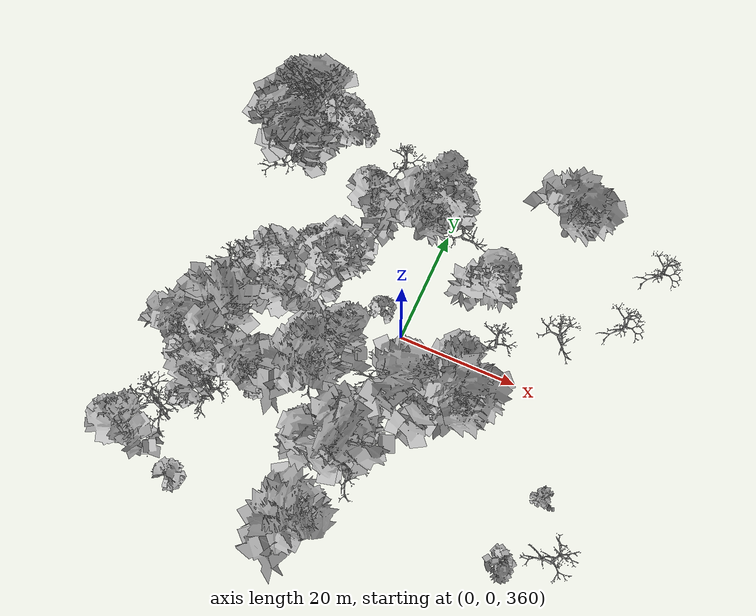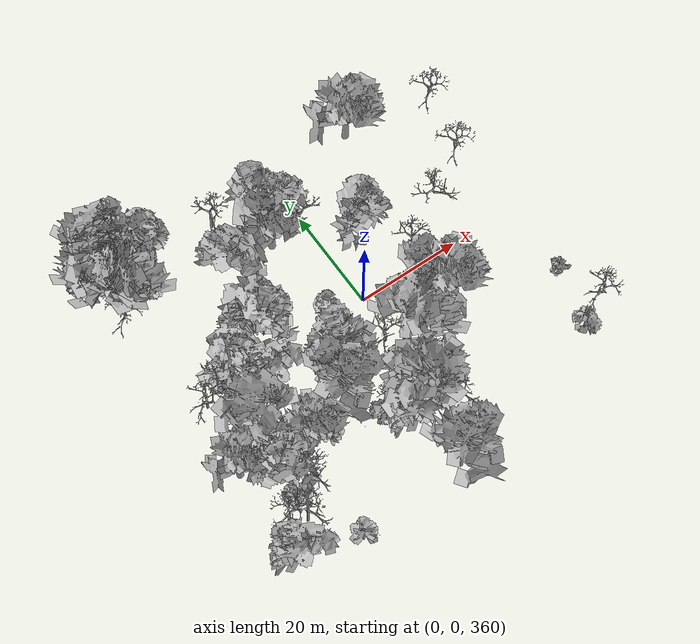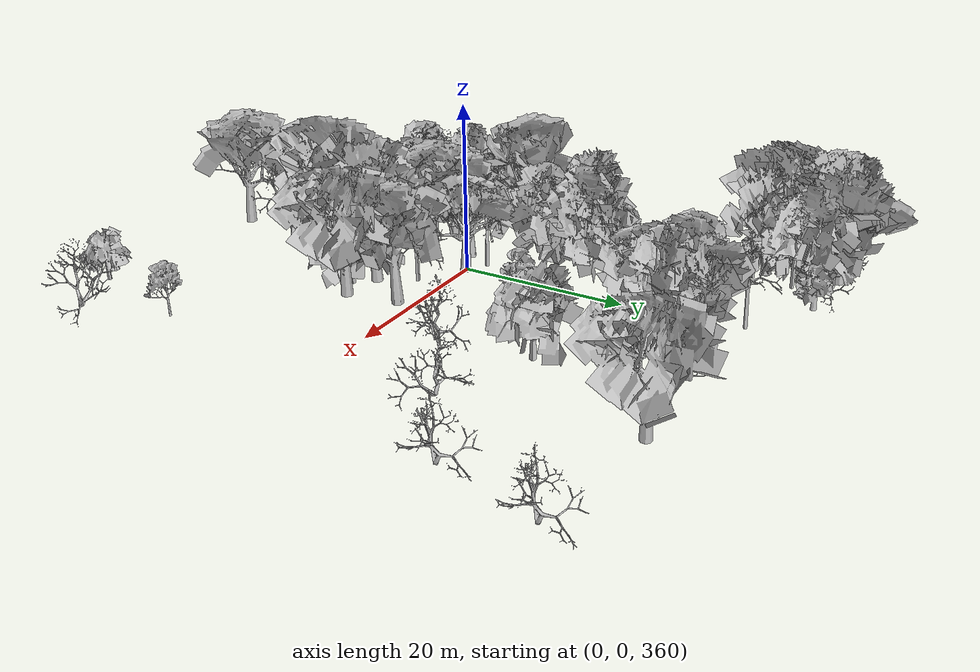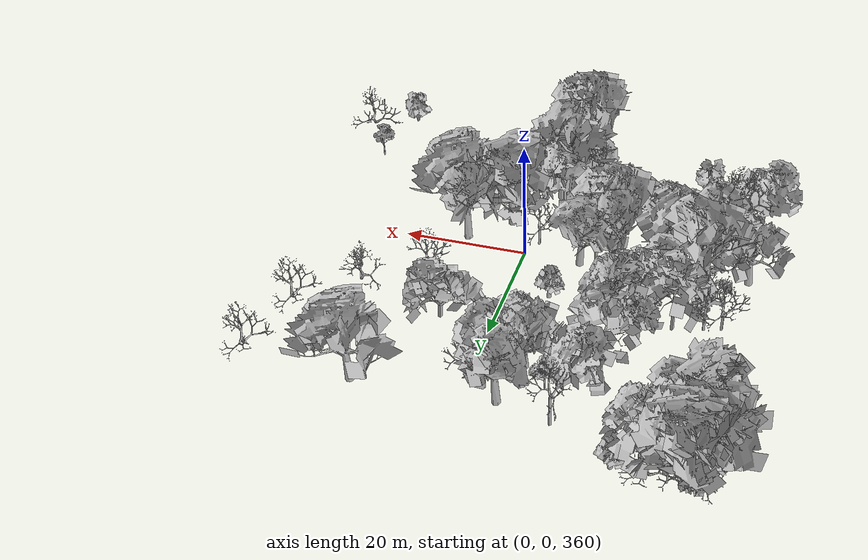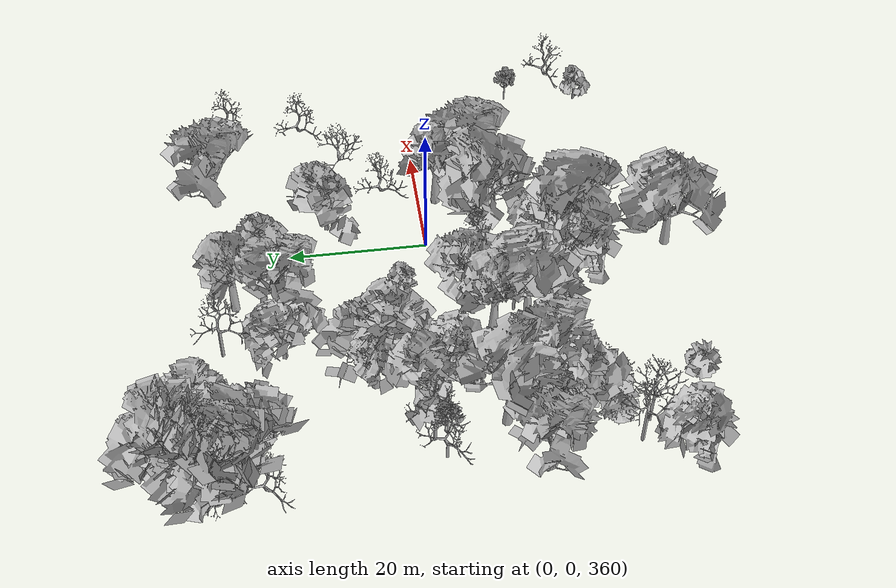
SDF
<sdf version="1.6">
 <world name="default">
  <light name="sun" type="directional">
   <pose>0 0 10 0 -0 0</pose>
   <diffuse>0.8 0.8 0.8 1</diffuse>
   <specular>0.2 0.2 0.2 1</specular>
   <attenuation>
    <range>1000</range>
    <constant>0.9</constant>
    <linear>0.01</linear>
    <quadratic>0.001</quadratic>
   </attenuation>
   <direction>-0.5 0.1 -0.9</direction>
  </light>
  <scene>
   <sky><clouds><speed>12</speed></clouds></sky>
   <ambient>0.4 0.4 0.4 1</ambient>
   <background>0.7 0.7 0.7 1</background>
   <shadows>1</shadows>
  </scene>
  <spherical_coordinates>
   <surface_model>EARTH_WGS84</surface_model>
   <latitude_deg>47.3977</latitude_deg>
   <longitude_deg>8.54559</longitude_deg>
   <elevation>0</elevation>
   <heading_deg>0</heading_deg>
  </spherical_coordinates>
  <physics name="default_physics" default="0" type="ode">
   <ode>
    <solver>
     <type>quick</type>
     <iters>100</iters>
     <sor>1.3</sor>
     <use_dynamic_moi_rescaling>0</use_dynamic_moi_rescaling>
    </solver>
    <constraints>
     <cfm>0</cfm>
     <erp>0.2</erp>
     <contact_max_correcting_vel>100</contact_max_correcting_vel>
     <contact_surface_layer>0.001</contact_surface_layer>
    </constraints>
   </ode>
   <max_step_size>0.002</max_step_size>
   <real_time_factor>1</real_time_factor>
   <real_time_update_rate>500</real_time_update_rate>
  </physics>
  <gravity>0 0 -9.8</gravity>
  <magnetic_field>6e-06 2.3e-05 -4.2e-05</magnetic_field>
  <atmosphere type="adiabatic"/>
  <model name="my_mesh0">
   <pose>-35.3652 30.8476 352.438 0 -0 0.195877</pose>
   <static>1</static>
   <link name="body">
    <visual name="visual">
     <geometry><mesh><uri>model://trees/6.dae</uri><scale>1 1 1</scale></mesh></geometry>
    </visual>
    <collision name="collision">
     <geometry><mesh><uri>model://trees/6.dae</uri><scale>1 1 1</scale></mesh></geometry>
    </collision>
   </link>
  </model>
  <model name="my_mesh1">
   <pose>-33.8111 35.8738 352.652 0 -0 1.45059</pose>
   <static>1</static>
   <link name="body">
    <visual name="visual">
     <geometry><mesh><uri>model://trees/18.dae</uri><scale>1 1 1</scale></mesh></geometry>
    </visual>
    <collision name="collision">
     <geometry><mesh><uri>model://trees/18.dae</uri><scale>1 1 1</scale></mesh></geometry>
    </collision>
   </link>
  </model>
  <model name="my_mesh2">
   <pose>-33.1774 34.299 353.007 0 -0 1.39444</pose>
   <static>1</static>
   <link name="body">
    <visual name="visual">
     <geometry><mesh><uri>model://trees/1.dae</uri><scale>1 1 1</scale></mesh></geometry>
    </visual>
    <collision name="collision">
     <geometry><mesh><uri>model://trees/1.dae</uri><scale>1 1 1</scale></mesh></geometry>
    </collision>
   </link>
  </model>
  <model name="my_mesh3">
   <pose>-33.4604 26.9263 352.824 0 -0 1.07317</pose>
   <static>1</static>
   <link name="body">
    <visual name="visual">
     <geometry><mesh><uri>model://trees/10.dae</uri><scale>1 1 1</scale></mesh></geometry>
    </visual>
    <collision name="collision">
     <geometry><mesh><uri>model://trees/10.dae</uri><scale>1 1 1</scale></mesh></geometry>
    </collision>
   </link>
  </model>
  <model name="my_mesh4">
   <pose>-27.8132 31.2287 353.285 0 0 -1.21546</pose>
   <static>1</static>
   <link name="body">
    <visual name="visual">
     <geometry><mesh><uri>model://trees/16.dae</uri><scale>1 1 1</scale></mesh></geometry>
    </visual>
    <collision name="collision">
     <geometry><mesh><uri>model://trees/16.dae</uri><scale>1 1 1</scale></mesh></geometry>
    </collision>
   </link>
  </model>
  <model name="my_mesh5">
   <pose>-35.2301 33.1384 352.367 0 -0 1.33233</pose>
   <static>1</static>
   <link name="body">
    <visual name="visual">
     <geometry><mesh><uri>model://trees/6.dae</uri><scale>1 1 1</scale></mesh></geometry>
    </visual>
    <collision name="collision">
     <geometry><mesh><uri>model://trees/6.dae</uri><scale>1 1 1</scale></mesh></geometry>
    </collision>
   </link>
  </model>
  <model name="my_mesh6">
   <pose>-30.2027 31.773 353.059 0 0 -0.309634</pose>
   <static>1</static>
   <link name="body">
    <visual name="visual">
     <geometry><mesh><uri>model://trees/8.dae</uri><scale>1 1 1</scale></mesh></geometry>
    </visual>
    <collision name="collision">
     <geometry><mesh><uri>model://trees/8.dae</uri><scale>1 1 1</scale></mesh></geometry>
    </collision>
   </link>
  </model>
  <model name="my_mesh7">
   <pose>-27.9609 35.1296 353.264 0 0 -1.38393</pose>
   <static>1</static>
   <link name="body">
    <visual name="visual">
     <geometry><mesh><uri>model://trees/19.dae</uri><scale>1 1 1</scale></mesh></geometry>
    </visual>
    <collision name="collision">
     <geometry><mesh><uri>model://trees/19.dae</uri><scale>1 1 1</scale></mesh></geometry>
    </collision>
   </link>
  </model>
  <model name="my_mesh8">
   <pose>-28.6367 25.7717 353.212 0 -0 1.24113</pose>
   <static>1</static>
   <link name="body">
    <visual name="visual">
     <geometry><mesh><uri>model://trees/4.dae</uri><scale>1 1 1</scale></mesh></geometry>
    </visual>
    <collision name="collision">
     <geometry><mesh><uri>model://trees/4.dae</uri><scale>1 1 1</scale></mesh></geometry>
    </collision>
   </link>
  </model>
  <model name="my_mesh9">
   <pose>-35.3462 34.7001 352.317 0 0 -0.646969</pose>
   <static>1</static>
   <link name="body">
    <visual name="visual">
     <geometry><mesh><uri>model://trees/7.dae</uri><scale>1 1 1</scale></mesh></geometry>
    </visual>
    <collision name="collision">
     <geometry><mesh><uri>model://trees/7.dae</uri><scale>1 1 1</scale></mesh></geometry>
    </collision>
   </link>
  </model>
  <model name="my_mesh10">
   <pose>-35.0793 35.2213 352.303 0 -0 0.65713</pose>
   <static>1</static>
   <link name="body">
    <visual name="visual">
     <geometry><mesh><uri>model://trees/4.dae</uri><scale>1 1 1</scale></mesh></geometry>
    </visual>
    <collision name="collision">
     <geometry><mesh><uri>model://trees/4.dae</uri><scale>1 1 1</scale></mesh></geometry>
    </collision>
   </link>
  </model>
  <model name="my_mesh11">
   <pose>-35.1208 31.8485 352.42 0 0 -0.014671</pose>
   <static>1</static>
   <link name="body">
    <visual name="visual">
     <geometry><mesh><uri>model://trees/10.dae</uri><scale>1 1 1</scale></mesh></geometry>
    </visual>
    <collision name="collision">
     <geometry><mesh><uri>model://trees/10.dae</uri><scale>1 1 1</scale></mesh></geometry>
    </collision>
   </link>
  </model>
  <model name="my_mesh12">
   <pose>-34.9672 31.3913 352.637 0 -0 0.879317</pose>
   <static>1</static>
   <link name="body">
    <visual name="visual">
     <geometry><mesh><uri>model://trees/6.dae</uri><scale>1 1 1</scale></mesh></geometry>
    </visual>
    <collision name="collision">
     <geometry><mesh><uri>model://trees/6.dae</uri><scale>1 1 1</scale></mesh></geometry>
    </collision>
   </link>
  </model>
  <model name="my_mesh13">
   <pose>-35.3134 35.0784 352.303 0 -0 0.163908</pose>
   <static>1</static>
   <link name="body">
    <visual name="visual">
     <geometry><mesh><uri>model://trees/3.dae</uri><scale>1 1 1</scale></mesh></geometry>
    </visual>
    <collision name="collision">
     <geometry><mesh><uri>model://trees/3.dae</uri><scale>1 1 1</scale></mesh></geometry>
    </collision>
   </link>
  </model>
  <model name="my_mesh14">
   <pose>-35.5754 33.8266 352.342 0 0 -0.976255</pose>
   <static>1</static>
   <link name="body">
    <visual name="visual">
     <geometry><mesh><uri>model://trees/3.dae</uri><scale>1 1 1</scale></mesh></geometry>
    </visual>
    <collision name="collision">
     <geometry><mesh><uri>model://trees/3.dae</uri><scale>1 1 1</scale></mesh></geometry>
    </collision>
   </link>
  </model>
  <model name="my_mesh15">
   <pose>-35.6537 31.3052 352.438 0 -0 0.503863</pose>
   <static>1</static>
   <link name="body">
    <visual name="visual">
     <geometry><mesh><uri>model://trees/11.dae</uri><scale>1 1 1</scale></mesh></geometry>
    </visual>
    <collision name="collision">
     <geometry><mesh><uri>model://trees/11.dae</uri><scale>1 1 1</scale></mesh></geometry>
    </collision>
   </link>
  </model>
  <model name="my_mesh16">
   <pose>-35.3943 35.0769 352.303 0 -0 1.33201</pose>
   <static>1</static>
   <link name="body">
    <visual name="visual">
     <geometry><mesh><uri>model://trees/4.dae</uri><scale>1 1 1</scale></mesh></geometry>
    </visual>
    <collision name="collision">
     <geometry><mesh><uri>model://trees/4.dae</uri><scale>1 1 1</scale></mesh></geometry>
    </collision>
   </link>
  </model>
  <model name="my_mesh17">
   <pose>-34.5774 32.4387 352.584 0 -0 1.11186</pose>
   <static>1</static>
   <link name="body">
    <visual name="visual">
     <geometry><mesh><uri>model://trees/9.dae</uri><scale>1 1 1</scale></mesh></geometry>
    </visual>
    <collision name="collision">
     <geometry><mesh><uri>model://trees/9.dae</uri><scale>1 1 1</scale></mesh></geometry>
    </collision>
   </link>
  </model>
  <model name="my_mesh18">
   <pose>-30.0454 32.6426 353.126 0 0 -1.21532</pose>
   <static>1</static>
   <link name="body">
    <visual name="visual">
     <geometry><mesh><uri>model://trees/0.dae</uri><scale>1 1 1</scale></mesh></geometry>
    </visual>
    <collision name="collision">
     <geometry><mesh><uri>model://trees/0.dae</uri><scale>1 1 1</scale></mesh></geometry>
    </collision>
   </link>
  </model>
  <model name="my_mesh19">
   <pose>-32.3921 35.3133 352.99 0 0 -1.11481</pose>
   <static>1</static>
   <link name="body">
    <visual name="visual">
     <geometry><mesh><uri>model://trees/2.dae</uri><scale>1 1 1</scale></mesh></geometry>
    </visual>
    <collision name="collision">
     <geometry><mesh><uri>model://trees/2.dae</uri><scale>1 1 1</scale></mesh></geometry>
    </collision>
   </link>
  </model>
  <model name="my_mesh20">
   <pose>-30.4644 26.9543 353.027 0 0 -1.51296</pose>
   <static>1</static>
   <link name="body">
    <visual name="visual">
     <geometry><mesh><uri>model://trees/16.dae</uri><scale>1 1 1</scale></mesh></geometry>
    </visual>
    <collision name="collision">
     <geometry><mesh><uri>model://trees/16.dae</uri><scale>1 1 1</scale></mesh></geometry>
    </collision>
   </link>
  </model>
  <model name="my_mesh21">
   <pose>-34.9238 33.6717 352.496 0 0 -1.35786</pose>
   <static>1</static>
   <link name="body">
    <visual name="visual">
     <geometry><mesh><uri>model://trees/5.dae</uri><scale>1 1 1</scale></mesh></geometry>
    </visual>
    <collision name="collision">
     <geometry><mesh><uri>model://trees/5.dae</uri><scale>1 1 1</scale></mesh></geometry>
    </collision>
   </link>
  </model>
  <model name="my_mesh22">
   <pose>-22.5848 35.5524 353.517 0 -0 0.316544</pose>
   <static>1</static>
   <link name="body">
    <visual name="visual">
     <geometry><mesh><uri>model://trees/1.dae</uri><scale>1 1 1</scale></mesh></geometry>
    </visual>
    <collision name="collision">
     <geometry><mesh><uri>model://trees/1.dae</uri><scale>1 1 1</scale></mesh></geometry>
    </collision>
   </link>
  </model>
  <model name="my_mesh23">
   <pose>-34.1499 33.7954 352.752 0 -0 0.523449</pose>
   <static>1</static>
   <link name="body">
    <visual name="visual">
     <geometry><mesh><uri>model://trees/1.dae</uri><scale>1 1 1</scale></mesh></geometry>
    </visual>
    <collision name="collision">
     <geometry><mesh><uri>model://trees/1.dae</uri><scale>1 1 1</scale></mesh></geometry>
    </collision>
   </link>
  </model>
  <model name="my_mesh24">
   <pose>-35.4867 32.8474 352.394 0 0 -0.36767</pose>
   <static>1</static>
   <link name="body">
    <visual name="visual">
     <geometry><mesh><uri>model://trees/8.dae</uri><scale>1 1 1</scale></mesh></geometry>
    </visual>
    <collision name="collision">
     <geometry><mesh><uri>model://trees/8.dae</uri><scale>1 1 1</scale></mesh></geometry>
    </collision>
   </link>
  </model>
  <model name="my_mesh25">
   <pose>-35.0599 32.5403 352.394 0 -0 0.427675</pose>
   <static>1</static>
   <link name="body">
    <visual name="visual">
     <geometry><mesh><uri>model://trees/1.dae</uri><scale>1 1 1</scale></mesh></geometry>
    </visual>
    <collision name="collision">
     <geometry><mesh><uri>model://trees/1.dae</uri><scale>1 1 1</scale></mesh></geometry>
    </collision>
   </link>
  </model>
  <model name="my_mesh26">
   <pose>-33.9811 34.1489 352.752 0 -0 0.124366</pose>
   <static>1</static>
   <link name="body">
    <visual name="visual">
     <geometry><mesh><uri>model://trees/10.dae</uri><scale>1 1 1</scale></mesh></geometry>
    </visual>
    <collision name="collision">
     <geometry><mesh><uri>model://trees/10.dae</uri><scale>1 1 1</scale></mesh></geometry>
    </collision>
   </link>
  </model>
  <model name="my_mesh27">
   <pose>-32.9803 35.8603 352.913 0 -0 0.493119</pose>
   <static>1</static>
   <link name="body">
    <visual name="visual">
     <geometry><mesh><uri>model://trees/10.dae</uri><scale>1 1 1</scale></mesh></geometry>
    </visual>
    <collision name="collision">
     <geometry><mesh><uri>model://trees/10.dae</uri><scale>1 1 1</scale></mesh></geometry>
    </collision>
   </link>
  </model>
  <model name="my_mesh28">
   <pose>-35.2699 35.5739 352.303 0 0 -1.27558</pose>
   <static>1</static>
   <link name="body">
    <visual name="visual">
     <geometry><mesh><uri>model://trees/6.dae</uri><scale>1 1 1</scale></mesh></geometry>
    </visual>
    <collision name="collision">
     <geometry><mesh><uri>model://trees/6.dae</uri><scale>1 1 1</scale></mesh></geometry>
    </collision>
   </link>
  </model>
  <model name="my_mesh29">
   <pose>-30.7212 35.82 353.118 0 0 -1.14758</pose>
   <static>1</static>
   <link name="body">
    <visual name="visual">
     <geometry><mesh><uri>model://trees/3.dae</uri><scale>1 1 1</scale></mesh></geometry>
    </visual>
    <collision name="collision">
     <geometry><mesh><uri>model://trees/3.dae</uri><scale>1 1 1</scale></mesh></geometry>
    </collision>
   </link>
  </model>
  <model name="my_mesh30">
   <pose>-34.6891 25.1217 352.783 0 0 -0.655012</pose>
   <static>1</static>
   <link name="body">
    <visual name="visual">
     <geometry><mesh><uri>model://trees/19.dae</uri><scale>1 1 1</scale></mesh></geometry>
    </visual>
    <collision name="collision">
     <geometry><mesh><uri>model://trees/19.dae</uri><scale>1 1 1</scale></mesh></geometry>
    </collision>
   </link>
  </model>
  <model name="my_mesh31">
   <pose>-34.535 28.0293 352.753 0 -0 1.38447</pose>
   <static>1</static>
   <link name="body">
    <visual name="visual">
     <geometry><mesh><uri>model://trees/10.dae</uri><scale>1 1 1</scale></mesh></geometry>
    </visual>
    <collision name="collision">
     <geometry><mesh><uri>model://trees/10.dae</uri><scale>1 1 1</scale></mesh></geometry>
    </collision>
   </link>
  </model>
  <model name="my_mesh32">
   <pose>-34.4174 34.0121 352.496 0 -0 0.303908</pose>
   <static>1</static>
   <link name="body">
    <visual name="visual">
     <geometry><mesh><uri>model://trees/19.dae</uri><scale>1 1 1</scale></mesh></geometry>
    </visual>
    <collision name="collision">
     <geometry><mesh><uri>model://trees/19.dae</uri><scale>1 1 1</scale></mesh></geometry>
    </collision>
   </link>
  </model>
  <model name="my_mesh33">
   <pose>9.64162 14.218 356.296 0 0 -1.20583</pose>
   <static>1</static>
   <link name="body">
    <visual name="visual">
     <geometry><mesh><uri>model://trees/13.dae</uri><scale>1 1 1</scale></mesh></geometry>
    </visual>
    <collision name="collision">
     <geometry><mesh><uri>model://trees/13.dae</uri><scale>1 1 1</scale></mesh></geometry>
    </collision>
   </link>
  </model>
  <model name="my_mesh34">
   <pose>-20.6433 2.03179 354.302 0 -0 1.35752</pose>
   <static>1</static>
   <link name="body">
    <visual name="visual">
     <geometry><mesh><uri>model://trees/5.dae</uri><scale>1 1 1</scale></mesh></geometry>
    </visual>
    <collision name="collision">
     <geometry><mesh><uri>model://trees/5.dae</uri><scale>1 1 1</scale></mesh></geometry>
    </collision>
   </link>
  </model>
  <model name="my_mesh35">
   <pose>2.0374 -24.5746 359.397 0 -0 0.504312</pose>
   <static>1</static>
   <link name="body">
    <visual name="visual">
     <geometry><mesh><uri>model://trees/16.dae</uri><scale>1 1 1</scale></mesh></geometry>
    </visual>
    <collision name="collision">
     <geometry><mesh><uri>model://trees/16.dae</uri><scale>1 1 1</scale></mesh></geometry>
    </collision>
   </link>
  </model>
  <model name="my_mesh36">
   <pose>-20.4853 9.58534 354.003 0 -0 1.25344</pose>
   <static>1</static>
   <link name="body">
    <visual name="visual">
     <geometry><mesh><uri>model://trees/7.dae</uri><scale>1 1 1</scale></mesh></geometry>
    </visual>
    <collision name="collision">
     <geometry><mesh><uri>model://trees/7.dae</uri><scale>1 1 1</scale></mesh></geometry>
    </collision>
   </link>
  </model>
  <model name="my_mesh37">
   <pose>-21.3967 -15.483 353.909 0 0 -0.556266</pose>
   <static>1</static>
   <link name="body">
    <visual name="visual">
     <geometry><mesh><uri>model://trees/8.dae</uri><scale>1 1 1</scale></mesh></geometry>
    </visual>
    <collision name="collision">
     <geometry><mesh><uri>model://trees/8.dae</uri><scale>1 1 1</scale></mesh></geometry>
    </collision>
   </link>
  </model>
  <model name="my_mesh38">
   <pose>-12.4264 30.3753 354.186 0 0 -0.112471</pose>
   <static>1</static>
   <link name="body">
    <visual name="visual">
     <geometry><mesh><uri>model://trees/16.dae</uri><scale>1 1 1</scale></mesh></geometry>
    </visual>
    <collision name="collision">
     <geometry><mesh><uri>model://trees/16.dae</uri><scale>1 1 1</scale></mesh></geometry>
    </collision>
   </link>
  </model>
  <model name="my_mesh39">
   <pose>-24.528 -35.0099 353.548 0 0 -1.35545</pose>
   <static>1</static>
   <link name="body">
    <visual name="visual">
     <geometry><mesh><uri>model://trees/5.dae</uri><scale>1 1 1</scale></mesh></geometry>
    </visual>
    <collision name="collision">
     <geometry><mesh><uri>model://trees/5.dae</uri><scale>1 1 1</scale></mesh></geometry>
    </collision>
   </link>
  </model>
  <model name="my_mesh40">
   <pose>-32.7516 1.48252 352.783 0 0 -0.872725</pose>
   <static>1</static>
   <link name="body">
    <visual name="visual">
     <geometry><mesh><uri>model://trees/17.dae</uri><scale>1 1 1</scale></mesh></geometry>
    </visual>
    <collision name="collision">
     <geometry><mesh><uri>model://trees/17.dae</uri><scale>1 1 1</scale></mesh></geometry>
    </collision>
   </link>
  </model>
  <model name="my_mesh41">
   <pose>-26.3413 33.6267 353.363 0 0 -0.373485</pose>
   <static>1</static>
   <link name="body">
    <visual name="visual">
     <geometry><mesh><uri>model://trees/15.dae</uri><scale>1 1 1</scale></mesh></geometry>
    </visual>
    <collision name="collision">
     <geometry><mesh><uri>model://trees/15.dae</uri><scale>1 1 1</scale></mesh></geometry>
    </collision>
   </link>
  </model>
  <model name="my_mesh42">
   <pose>-6.47248 24.2568 354.881 0 0 -0.562773</pose>
   <static>1</static>
   <link name="body">
    <visual name="visual">
     <geometry><mesh><uri>model://trees/11.dae</uri><scale>1 1 1</scale></mesh></geometry>
    </visual>
    <collision name="collision">
     <geometry><mesh><uri>model://trees/11.dae</uri><scale>1 1 1</scale></mesh></geometry>
    </collision>
   </link>
  </model>
  <model name="my_mesh43">
   <pose>-2.40986 -35.6157 358.417 0 -0 0.441189</pose>
   <static>1</static>
   <link name="body">
    <visual name="visual">
     <geometry><mesh><uri>model://trees/9.dae</uri><scale>1 1 1</scale></mesh></geometry>
    </visual>
    <collision name="collision">
     <geometry><mesh><uri>model://trees/9.dae</uri><scale>1 1 1</scale></mesh></geometry>
    </collision>
   </link>
  </model>
  <model name="my_mesh44">
   <pose>-30.5511 -13.3524 352.61 0 0 -1.52076</pose>
   <static>1</static>
   <link name="body">
    <visual name="visual">
     <geometry><mesh><uri>model://trees/12.dae</uri><scale>1 1 1</scale></mesh></geometry>
    </visual>
    <collision name="collision">
     <geometry><mesh><uri>model://trees/12.dae</uri><scale>1 1 1</scale></mesh></geometry>
    </collision>
   </link>
  </model>
  <model name="my_mesh45">
   <pose>-0.876534 -21.3767 358.098 0 -0 0.147342</pose>
   <static>1</static>
   <link name="body">
    <visual name="visual">
     <geometry><mesh><uri>model://trees/11.dae</uri><scale>1 1 1</scale></mesh></geometry>
    </visual>
    <collision name="collision">
     <geometry><mesh><uri>model://trees/11.dae</uri><scale>1 1 1</scale></mesh></geometry>
    </collision>
   </link>
  </model>
  <model name="my_mesh46">
   <pose>-25.333 4.49982 353.659 0 0 -1.16512</pose>
   <static>1</static>
   <link name="body">
    <visual name="visual">
     <geometry><mesh><uri>model://trees/15.dae</uri><scale>1 1 1</scale></mesh></geometry>
    </visual>
    <collision name="collision">
     <geometry><mesh><uri>model://trees/15.dae</uri><scale>1 1 1</scale></mesh></geometry>
    </collision>
   </link>
  </model>
  <model name="my_mesh47">
   <pose>-30.0887 2.74625 353.21 0 0 -0.51775</pose>
   <static>1</static>
   <link name="body">
    <visual name="visual">
     <geometry><mesh><uri>model://trees/16.dae</uri><scale>1 1 1</scale></mesh></geometry>
    </visual>
    <collision name="collision">
     <geometry><mesh><uri>model://trees/16.dae</uri><scale>1 1 1</scale></mesh></geometry>
    </collision>
   </link>
  </model>
  <model name="my_mesh48">
   <pose>-28.5476 -7.23359 353.202 0 0 -0.482808</pose>
   <static>1</static>
   <link name="body">
    <visual name="visual">
     <geometry><mesh><uri>model://trees/10.dae</uri><scale>1 1 1</scale></mesh></geometry>
    </visual>
    <collision name="collision">
     <geometry><mesh><uri>model://trees/10.dae</uri><scale>1 1 1</scale></mesh></geometry>
    </collision>
   </link>
  </model>
  <model name="my_mesh49">
   <pose>-35.1346 -12.2325 351.974 0 0 -0.948463</pose>
   <static>1</static>
   <link name="body">
    <visual name="visual">
     <geometry><mesh><uri>model://trees/8.dae</uri><scale>1 1 1</scale></mesh></geometry>
    </visual>
    <collision name="collision">
     <geometry><mesh><uri>model://trees/8.dae</uri><scale>1 1 1</scale></mesh></geometry>
    </collision>
   </link>
  </model>
  <model name="my_mesh50">
   <pose>-25.1964 -20.5355 353.371 0 -0 0.108292</pose>
   <static>1</static>
   <link name="body">
    <visual name="visual">
     <geometry><mesh><uri>model://trees/17.dae</uri><scale>1 1 1</scale></mesh></geometry>
    </visual>
    <collision name="collision">
     <geometry><mesh><uri>model://trees/17.dae</uri><scale>1 1 1</scale></mesh></geometry>
    </collision>
   </link>
  </model>
  <model name="my_mesh51">
   <pose>-25.7694 -19.3413 353.344 0 0 -0.113665</pose>
   <static>1</static>
   <link name="body">
    <visual name="visual">
     <geometry><mesh><uri>model://trees/19.dae</uri><scale>1 1 1</scale></mesh></geometry>
    </visual>
    <collision name="collision">
     <geometry><mesh><uri>model://trees/19.dae</uri><scale>1 1 1</scale></mesh></geometry>
    </collision>
   </link>
  </model>
  <model name="my_mesh52">
   <pose>-16.1169 10.9042 354.321 0 0 -1.08845</pose>
   <static>1</static>
   <link name="body">
    <visual name="visual">
     <geometry><mesh><uri>model://trees/12.dae</uri><scale>1 1 1</scale></mesh></geometry>
    </visual>
    <collision name="collision">
     <geometry><mesh><uri>model://trees/12.dae</uri><scale>1 1 1</scale></mesh></geometry>
    </collision>
   </link>
  </model>
  <model name="my_mesh53">
   <pose>-34.2348 32.708 352.775 0 -0 1.50407</pose>
   <static>1</static>
   <link name="body">
    <visual name="visual">
     <geometry><mesh><uri>model://trees/19.dae</uri><scale>1 1 1</scale></mesh></geometry>
    </visual>
    <collision name="collision">
     <geometry><mesh><uri>model://trees/19.dae</uri><scale>1 1 1</scale></mesh></geometry>
    </collision>
   </link>
  </model>
  <model name="my_mesh54">
   <pose>-9.35396 -19.0089 355.811 0 -0 1.1679</pose>
   <static>1</static>
   <link name="body">
    <visual name="visual">
     <geometry><mesh><uri>model://trees/4.dae</uri><scale>1 1 1</scale></mesh></geometry>
    </visual>
    <collision name="collision">
     <geometry><mesh><uri>model://trees/4.dae</uri><scale>1 1 1</scale></mesh></geometry>
    </collision>
   </link>
  </model>
  <model name="my_mesh55">
   <pose>-21.238 -14.4147 353.855 0 -0 1.38274</pose>
   <static>1</static>
   <link name="body">
    <visual name="visual">
     <geometry><mesh><uri>model://trees/1.dae</uri><scale>1 1 1</scale></mesh></geometry>
    </visual>
    <collision name="collision">
     <geometry><mesh><uri>model://trees/1.dae</uri><scale>1 1 1</scale></mesh></geometry>
    </collision>
   </link>
  </model>
  <model name="my_mesh56">
   <pose>-7.8816 -5.27165 355.608 0 -0 1.41294</pose>
   <static>1</static>
   <link name="body">
    <visual name="visual">
     <geometry><mesh><uri>model://trees/8.dae</uri><scale>1 1 1</scale></mesh></geometry>
    </visual>
    <collision name="collision">
     <geometry><mesh><uri>model://trees/8.dae</uri><scale>1 1 1</scale></mesh></geometry>
    </collision>
   </link>
  </model>
  <model name="my_mesh57">
   <pose>-16.7523 7.11734 354.376 0 -0 0.374418</pose>
   <static>1</static>
   <link name="body">
    <visual name="visual">
     <geometry><mesh><uri>model://trees/15.dae</uri><scale>1 1 1</scale></mesh></geometry>
    </visual>
    <collision name="collision">
     <geometry><mesh><uri>model://trees/15.dae</uri><scale>1 1 1</scale></mesh></geometry>
    </collision>
   </link>
  </model>
  <model name="my_mesh58">
   <pose>-10.1729 -11.3798 355.43 0 -0 0.327623</pose>
   <static>1</static>
   <link name="body">
    <visual name="visual">
     <geometry><mesh><uri>model://trees/16.dae</uri><scale>1 1 1</scale></mesh></geometry>
    </visual>
    <collision name="collision">
     <geometry><mesh><uri>model://trees/16.dae</uri><scale>1 1 1</scale></mesh></geometry>
    </collision>
   </link>
  </model>
  <model name="my_mesh59">
   <pose>-1.71413 23.879 355.045 0 0 -0.591296</pose>
   <static>1</static>
   <link name="body">
    <visual name="visual">
     <geometry><mesh><uri>model://trees/14.dae</uri><scale>1 1 1</scale></mesh></geometry>
    </visual>
    <collision name="collision">
     <geometry><mesh><uri>model://trees/14.dae</uri><scale>1 1 1</scale></mesh></geometry>
    </collision>
   </link>
  </model>
  <model name="my_mesh60">
   <pose>-29.2906 0.886631 353.324 0 -0 0.376002</pose>
   <static>1</static>
   <link name="body">
    <visual name="visual">
     <geometry><mesh><uri>model://trees/6.dae</uri><scale>1 1 1</scale></mesh></geometry>
    </visual>
    <collision name="collision">
     <geometry><mesh><uri>model://trees/6.dae</uri><scale>1 1 1</scale></mesh></geometry>
    </collision>
   </link>
  </model>
  <model name="my_mesh61">
   <pose>-29.807 -22.133 352.775 0 -0 1.05348</pose>
   <static>1</static>
   <link name="body">
    <visual name="visual">
     <geometry><mesh><uri>model://trees/5.dae</uri><scale>1 1 1</scale></mesh></geometry>
    </visual>
    <collision name="collision">
     <geometry><mesh><uri>model://trees/5.dae</uri><scale>1 1 1</scale></mesh></geometry>
    </collision>
   </link>
  </model>
  <model name="my_mesh62">
   <pose>-30.4342 -26.3936 352.794 0 -0 0.527643</pose>
   <static>1</static>
   <link name="body">
    <visual name="visual">
     <geometry><mesh><uri>model://trees/16.dae</uri><scale>1 1 1</scale></mesh></geometry>
    </visual>
    <collision name="collision">
     <geometry><mesh><uri>model://trees/16.dae</uri><scale>1 1 1</scale></mesh></geometry>
    </collision>
   </link>
  </model>
  <model name="my_mesh63">
   <pose>-0.408267 -7.43351 356.694 0 0 -0.58592</pose>
   <static>1</static>
   <link name="body">
    <visual name="visual">
     <geometry><mesh><uri>model://trees/17.dae</uri><scale>1 1 1</scale></mesh></geometry>
    </visual>
    <collision name="collision">
     <geometry><mesh><uri>model://trees/17.dae</uri><scale>1 1 1</scale></mesh></geometry>
    </collision>
   </link>
  </model>
  <model name="my_mesh64">
   <pose>-5.21461 4.17373 355.567 0 -0 0.550621</pose>
   <static>1</static>
   <link name="body">
    <visual name="visual">
     <geometry><mesh><uri>model://trees/1.dae</uri><scale>1 1 1</scale></mesh></geometry>
    </visual>
    <collision name="collision">
     <geometry><mesh><uri>model://trees/1.dae</uri><scale>1 1 1</scale></mesh></geometry>
    </collision>
   </link>
  </model>
  <model name="my_mesh65">
   <pose>-14.0759 21.7248 354.35 0 -0 0.434796</pose>
   <static>1</static>
   <link name="body">
    <visual name="visual">
     <geometry><mesh><uri>model://trees/13.dae</uri><scale>1 1 1</scale></mesh></geometry>
    </visual>
    <collision name="collision">
     <geometry><mesh><uri>model://trees/13.dae</uri><scale>1 1 1</scale></mesh></geometry>
    </collision>
   </link>
  </model>
  <model name="my_mesh66">
   <pose>-9.92838 23.8603 354.712 0 -0 1.51808</pose>
   <static>1</static>
   <link name="body">
    <visual name="visual">
     <geometry><mesh><uri>model://trees/2.dae</uri><scale>1 1 1</scale></mesh></geometry>
    </visual>
    <collision name="collision">
     <geometry><mesh><uri>model://trees/2.dae</uri><scale>1 1 1</scale></mesh></geometry>
    </collision>
   </link>
  </model>
  <model name="my_mesh67">
   <pose>-3.83547 28.5056 354.521 0 -0 1.25796</pose>
   <static>1</static>
   <link name="body">
    <visual name="visual">
     <geometry><mesh><uri>model://trees/11.dae</uri><scale>1 1 1</scale></mesh></geometry>
    </visual>
    <collision name="collision">
     <geometry><mesh><uri>model://trees/11.dae</uri><scale>1 1 1</scale></mesh></geometry>
    </collision>
   </link>
  </model>
  <model name="my_mesh68">
   <pose>-5.80459 20.4483 355.026 0 0 -0.614908</pose>
   <static>1</static>
   <link name="body">
    <visual name="visual">
     <geometry><mesh><uri>model://trees/8.dae</uri><scale>1 1 1</scale></mesh></geometry>
    </visual>
    <collision name="collision">
     <geometry><mesh><uri>model://trees/8.dae</uri><scale>1 1 1</scale></mesh></geometry>
    </collision>
   </link>
  </model>
  <model name="my_mesh69">
   <pose>12.5004 -8.09068 359.99 0 0 -0.988044</pose>
   <static>1</static>
   <link name="body">
    <visual name="visual">
     <geometry><mesh><uri>model://trees/9.dae</uri><scale>1 1 1</scale></mesh></geometry>
    </visual>
    <collision name="collision">
     <geometry><mesh><uri>model://trees/9.dae</uri><scale>1 1 1</scale></mesh></geometry>
    </collision>
   </link>
  </model>
  <model name="my_mesh70">
   <pose>-1.14083 -19.7371 357.806 0 0 -0.512686</pose>
   <static>1</static>
   <link name="body">
    <visual name="visual">
     <geometry><mesh><uri>model://trees/8.dae</uri><scale>1 1 1</scale></mesh></geometry>
    </visual>
    <collision name="collision">
     <geometry><mesh><uri>model://trees/8.dae</uri><scale>1 1 1</scale></mesh></geometry>
    </collision>
   </link>
  </model>
  <model name="my_mesh71">
   <pose>-18.7981 -17.0828 354.21 0 -0 1.55779</pose>
   <static>1</static>
   <link name="body">
    <visual name="visual">
     <geometry><mesh><uri>model://trees/2.dae</uri><scale>1 1 1</scale></mesh></geometry>
    </visual>
    <collision name="collision">
     <geometry><mesh><uri>model://trees/2.dae</uri><scale>1 1 1</scale></mesh></geometry>
    </collision>
   </link>
  </model>
  <model name="my_mesh72">
   <pose>33.0578 17.3485 357.799 0 0 -0.504973</pose>
   <static>1</static>
   <link name="body">
    <visual name="visual">
     <geometry><mesh><uri>model://trees/19.dae</uri><scale>1 1 1</scale></mesh></geometry>
    </visual>
    <collision name="collision">
     <geometry><mesh><uri>model://trees/19.dae</uri><scale>1 1 1</scale></mesh></geometry>
    </collision>
   </link>
  </model>
  <model name="my_mesh73">
   <pose>-11.6341 22.613 354.635 0 -0 0.50221</pose>
   <static>1</static>
   <link name="body">
    <visual name="visual">
     <geometry><mesh><uri>model://trees/1.dae</uri><scale>1 1 1</scale></mesh></geometry>
    </visual>
    <collision name="collision">
     <geometry><mesh><uri>model://trees/1.dae</uri><scale>1 1 1</scale></mesh></geometry>
    </collision>
   </link>
  </model>
  <model name="my_mesh74">
   <pose>-20.7479 -0.800827 354.387 0 -0 1.53961</pose>
   <static>1</static>
   <link name="body">
    <visual name="visual">
     <geometry><mesh><uri>model://trees/13.dae</uri><scale>1 1 1</scale></mesh></geometry>
    </visual>
    <collision name="collision">
     <geometry><mesh><uri>model://trees/13.dae</uri><scale>1 1 1</scale></mesh></geometry>
    </collision>
   </link>
  </model>
  <model name="my_mesh75">
   <pose>-1.36117 -20.947 357.956 0 0 -1.42</pose>
   <static>1</static>
   <link name="body">
    <visual name="visual">
     <geometry><mesh><uri>model://trees/10.dae</uri><scale>1 1 1</scale></mesh></geometry>
    </visual>
    <collision name="collision">
     <geometry><mesh><uri>model://trees/10.dae</uri><scale>1 1 1</scale></mesh></geometry>
    </collision>
   </link>
  </model>
  <model name="my_mesh76">
   <pose>27.9494 -27.9733 363.669 0 0 -1.47872</pose>
   <static>1</static>
   <link name="body">
    <visual name="visual">
     <geometry><mesh><uri>model://trees/4.dae</uri><scale>1 1 1</scale></mesh></geometry>
    </visual>
    <collision name="collision">
     <geometry><mesh><uri>model://trees/4.dae</uri><scale>1 1 1</scale></mesh></geometry>
    </collision>
   </link>
  </model>
  <model name="my_mesh77">
   <pose>-31.7648 28.0041 352.904 0 0 -1.5675</pose>
   <static>1</static>
   <link name="body">
    <visual name="visual">
     <geometry><mesh><uri>model://trees/4.dae</uri><scale>1 1 1</scale></mesh></geometry>
    </visual>
    <collision name="collision">
     <geometry><mesh><uri>model://trees/4.dae</uri><scale>1 1 1</scale></mesh></geometry>
    </collision>
   </link>
  </model>
  <model name="my_mesh78">
   <pose>8.315 -10.5791 359.202 0 -0 0.780881</pose>
   <static>1</static>
   <link name="body">
    <visual name="visual">
     <geometry><mesh><uri>model://trees/12.dae</uri><scale>1 1 1</scale></mesh></geometry>
    </visual>
    <collision name="collision">
     <geometry><mesh><uri>model://trees/12.dae</uri><scale>1 1 1</scale></mesh></geometry>
    </collision>
   </link>
  </model>
  <model name="my_mesh79">
   <pose>9.03111 -11.7457 359.514 0 0 -1.06615</pose>
   <static>1</static>
   <link name="body">
    <visual name="visual">
     <geometry><mesh><uri>model://trees/2.dae</uri><scale>1 1 1</scale></mesh></geometry>
    </visual>
    <collision name="collision">
     <geometry><mesh><uri>model://trees/2.dae</uri><scale>1 1 1</scale></mesh></geometry>
    </collision>
   </link>
  </model>
  <model name="my_mesh80">
   <pose>10.3939 -2.68973 359.31 0 -0 0.12157</pose>
   <static>1</static>
   <link name="body">
    <visual name="visual">
     <geometry><mesh><uri>model://trees/11.dae</uri><scale>1 1 1</scale></mesh></geometry>
    </visual>
    <collision name="collision">
     <geometry><mesh><uri>model://trees/11.dae</uri><scale>1 1 1</scale></mesh></geometry>
    </collision>
   </link>
  </model>
  <model name="my_mesh81">
   <pose>1.72435 23.4343 355.077 0 -0 1.48044</pose>
   <static>1</static>
   <link name="body">
    <visual name="visual">
     <geometry><mesh><uri>model://trees/18.dae</uri><scale>1 1 1</scale></mesh></geometry>
    </visual>
    <collision name="collision">
     <geometry><mesh><uri>model://trees/18.dae</uri><scale>1 1 1</scale></mesh></geometry>
    </collision>
   </link>
  </model>
  <model name="my_mesh82">
   <pose>-10.845 -3.87147 355.395 0 0 -1.43096</pose>
   <static>1</static>
   <link name="body">
    <visual name="visual">
     <geometry><mesh><uri>model://trees/16.dae</uri><scale>1 1 1</scale></mesh></geometry>
    </visual>
    <collision name="collision">
     <geometry><mesh><uri>model://trees/16.dae</uri><scale>1 1 1</scale></mesh></geometry>
    </collision>
   </link>
  </model>
  <model name="my_mesh83">
   <pose>-33.2589 -24.7393 352.302 0 -0 1.40913</pose>
   <static>1</static>
   <link name="body">
    <visual name="visual">
     <geometry><mesh><uri>model://trees/16.dae</uri><scale>1 1 1</scale></mesh></geometry>
    </visual>
    <collision name="collision">
     <geometry><mesh><uri>model://trees/16.dae</uri><scale>1 1 1</scale></mesh></geometry>
    </collision>
   </link>
  </model>
  <model name="my_mesh84">
   <pose>-4.8282 -22.1918 356.71 0 -0 1.32136</pose>
   <static>1</static>
   <link name="body">
    <visual name="visual">
     <geometry><mesh><uri>model://trees/13.dae</uri><scale>1 1 1</scale></mesh></geometry>
    </visual>
    <collision name="collision">
     <geometry><mesh><uri>model://trees/13.dae</uri><scale>1 1 1</scale></mesh></geometry>
    </collision>
   </link>
  </model>
  <model name="my_mesh85">
   <pose>-35.0844 -30.6626 351.984 0 -0 1.14488</pose>
   <static>1</static>
   <link name="body">
    <visual name="visual">
     <geometry><mesh><uri>model://trees/13.dae</uri><scale>1 1 1</scale></mesh></geometry>
    </visual>
    <collision name="collision">
     <geometry><mesh><uri>model://trees/13.dae</uri><scale>1 1 1</scale></mesh></geometry>
    </collision>
   </link>
  </model>
  <model name="my_mesh86">
   <pose>34.8354 -24.5049 364.191 0 0 -1.2525</pose>
   <static>1</static>
   <link name="body">
    <visual name="visual">
     <geometry><mesh><uri>model://trees/18.dae</uri><scale>1 1 1</scale></mesh></geometry>
    </visual>
    <collision name="collision">
     <geometry><mesh><uri>model://trees/18.dae</uri><scale>1 1 1</scale></mesh></geometry>
    </collision>
   </link>
  </model>
  <model name="my_mesh87">
   <pose>14.7636 5.30812 358.787 0 0 -0.457468</pose>
   <static>1</static>
   <link name="body">
    <visual name="visual">
     <geometry><mesh><uri>model://trees/18.dae</uri><scale>1 1 1</scale></mesh></geometry>
    </visual>
    <collision name="collision">
     <geometry><mesh><uri>model://trees/18.dae</uri><scale>1 1 1</scale></mesh></geometry>
    </collision>
   </link>
  </model>
  <model name="my_mesh88">
   <pose>-6.98703 -17.974 356.113 0 -0 1.21066</pose>
   <static>1</static>
   <link name="body">
    <visual name="visual">
     <geometry><mesh><uri>model://trees/19.dae</uri><scale>1 1 1</scale></mesh></geometry>
    </visual>
    <collision name="collision">
     <geometry><mesh><uri>model://trees/19.dae</uri><scale>1 1 1</scale></mesh></geometry>
    </collision>
   </link>
  </model>
  <model name="my_mesh89">
   <pose>-12.2871 -13.0236 355.054 0 -0 0.082902</pose>
   <static>1</static>
   <link name="body">
    <visual name="visual">
     <geometry><mesh><uri>model://trees/9.dae</uri><scale>1 1 1</scale></mesh></geometry>
    </visual>
    <collision name="collision">
     <geometry><mesh><uri>model://trees/9.dae</uri><scale>1 1 1</scale></mesh></geometry>
    </collision>
   </link>
  </model>
  <model name="my_mesh90">
   <pose>17.9374 31.0799 356.068 0 0 -1.18269</pose>
   <static>1</static>
   <link name="body">
    <visual name="visual">
     <geometry><mesh><uri>model://trees/9.dae</uri><scale>1 1 1</scale></mesh></geometry>
    </visual>
    <collision name="collision">
     <geometry><mesh><uri>model://trees/9.dae</uri><scale>1 1 1</scale></mesh></geometry>
    </collision>
   </link>
  </model>
  <model name="my_mesh91">
   <pose>-25.7801 -11.2566 353.308 0 -0 1.33507</pose>
   <static>1</static>
   <link name="body">
    <visual name="visual">
     <geometry><mesh><uri>model://trees/16.dae</uri><scale>1 1 1</scale></mesh></geometry>
    </visual>
    <collision name="collision">
     <geometry><mesh><uri>model://trees/16.dae</uri><scale>1 1 1</scale></mesh></geometry>
    </collision>
   </link>
  </model>
  <model name="my_mesh92">
   <pose>30.2205 -16.8835 362.951 0 -0 1.29173</pose>
   <static>1</static>
   <link name="body">
    <visual name="visual">
     <geometry><mesh><uri>model://trees/3.dae</uri><scale>1 1 1</scale></mesh></geometry>
    </visual>
    <collision name="collision">
     <geometry><mesh><uri>model://trees/3.dae</uri><scale>1 1 1</scale></mesh></geometry>
    </collision>
   </link>
  </model>
  <model name="my_mesh93">
   <pose>-13.324 -7.83391 354.992 0 -0 0.396721</pose>
   <static>1</static>
   <link name="body">
    <visual name="visual">
     <geometry><mesh><uri>model://trees/11.dae</uri><scale>1 1 1</scale></mesh></geometry>
    </visual>
    <collision name="collision">
     <geometry><mesh><uri>model://trees/11.dae</uri><scale>1 1 1</scale></mesh></geometry>
    </collision>
   </link>
  </model>
  <model name="my_mesh94">
   <pose>35.8837 29.2986 357.522 0 0 -0.625933</pose>
   <static>1</static>
   <link name="body">
    <visual name="visual">
     <geometry><mesh><uri>model://trees/19.dae</uri><scale>1 1 1</scale></mesh></geometry>
    </visual>
    <collision name="collision">
     <geometry><mesh><uri>model://trees/19.dae</uri><scale>1 1 1</scale></mesh></geometry>
    </collision>
   </link>
  </model>
  <model name="my_mesh95">
   <pose>23.7749 11.2068 358.371 0 -0 0.705011</pose>
   <static>1</static>
   <link name="body">
    <visual name="visual">
     <geometry><mesh><uri>model://trees/18.dae</uri><scale>1 1 1</scale></mesh></geometry>
    </visual>
    <collision name="collision">
     <geometry><mesh><uri>model://trees/18.dae</uri><scale>1 1 1</scale></mesh></geometry>
    </collision>
   </link>
  </model>
  <model name="my_mesh96">
   <pose>-28.5699 -17.3861 352.91 0 0 -0.124119</pose>
   <static>1</static>
   <link name="body">
    <visual name="visual">
     <geometry><mesh><uri>model://trees/14.dae</uri><scale>1 1 1</scale></mesh></geometry>
    </visual>
    <collision name="collision">
     <geometry><mesh><uri>model://trees/14.dae</uri><scale>1 1 1</scale></mesh></geometry>
    </collision>
   </link>
  </model>
  <model name="my_mesh97">
   <pose>-2.15428 -17.6375 357.412 0 -0 1.51576</pose>
   <static>1</static>
   <link name="body">
    <visual name="visual">
     <geometry><mesh><uri>model://trees/15.dae</uri><scale>1 1 1</scale></mesh></geometry>
    </visual>
    <collision name="collision">
     <geometry><mesh><uri>model://trees/15.dae</uri><scale>1 1 1</scale></mesh></geometry>
    </collision>
   </link>
  </model>
  <model name="my_mesh98">
   <pose>4.82269 -9.61039 358.356 0 -0 0.722059</pose>
   <static>1</static>
   <link name="body">
    <visual name="visual">
     <geometry><mesh><uri>model://trees/10.dae</uri><scale>1 1 1</scale></mesh></geometry>
    </visual>
    <collision name="collision">
     <geometry><mesh><uri>model://trees/10.dae</uri><scale>1 1 1</scale></mesh></geometry>
    </collision>
   </link>
  </model>
 </world>
</sdf>
